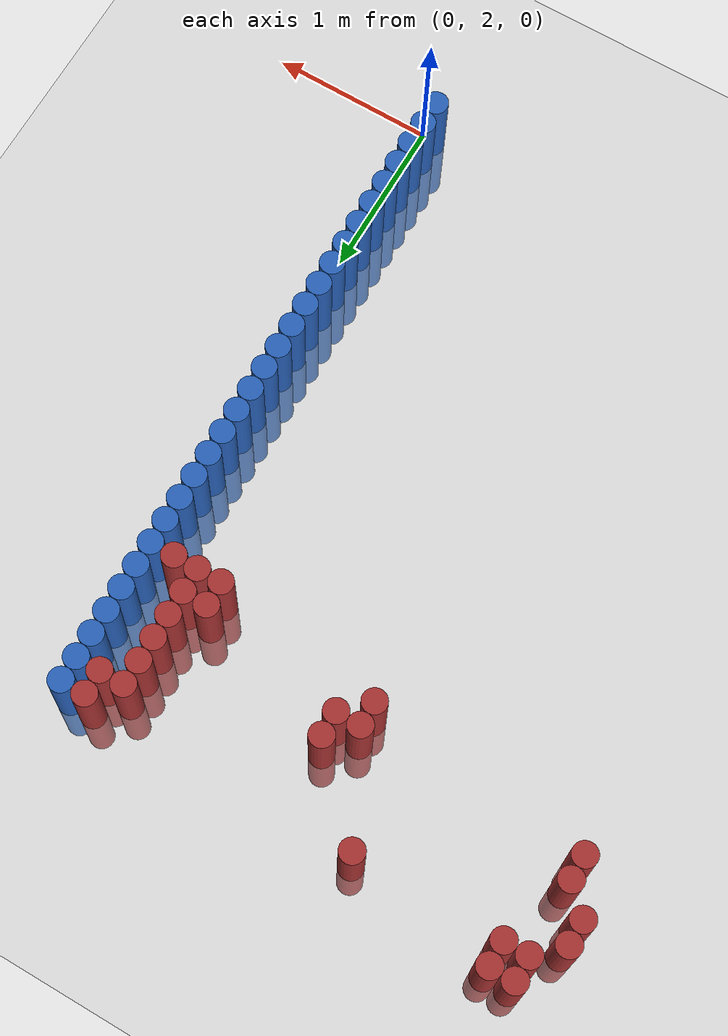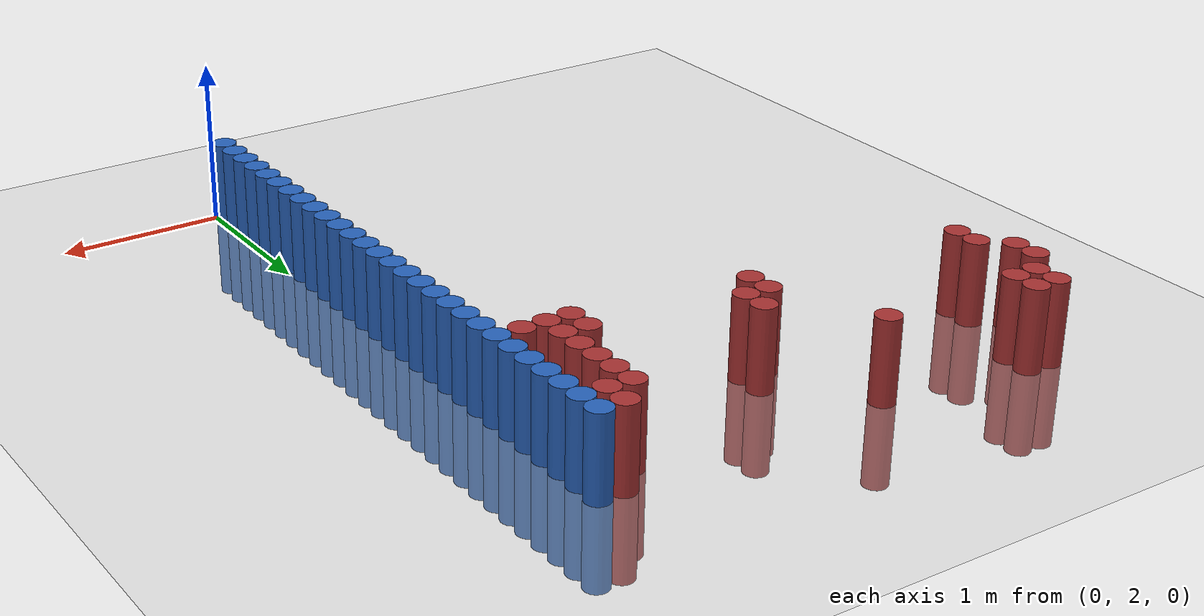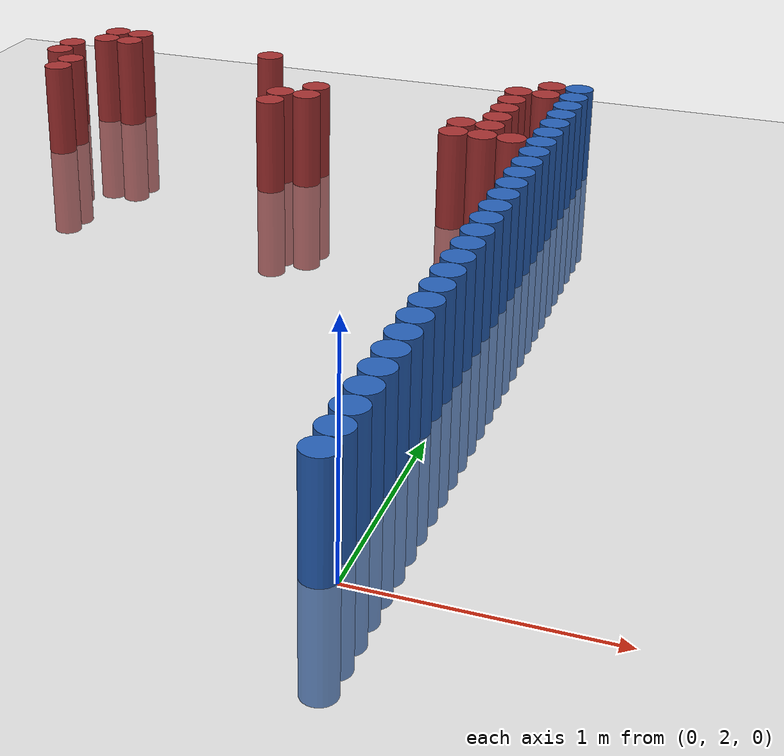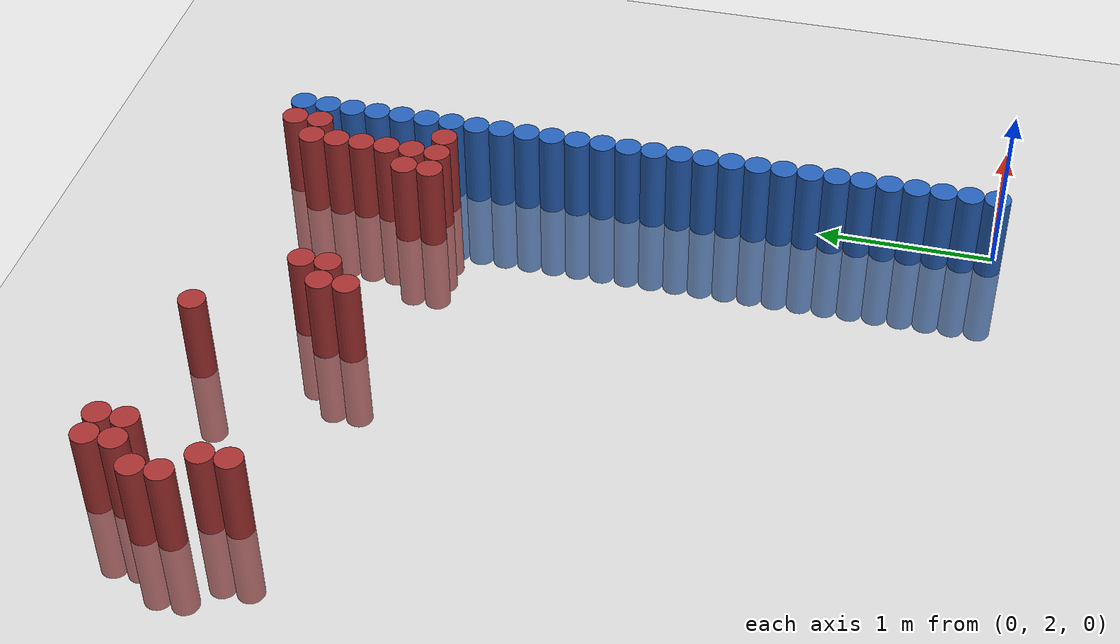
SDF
<sdf version="1.6">
 <world name="default">
  <model name="ground_plane">
   <static>1</static>
   <link name="link">
    <collision name="collision">
     <geometry><plane><normal>0 0 1</normal><size>100 100</size></plane></geometry>
     <surface><friction><ode><mu>100</mu><mu2>50</mu2></ode></friction></surface>
    </collision>
    <visual name="visual">
     <cast_shadows>0</cast_shadows>
     <geometry><plane><normal>0 0 1</normal><size>100 100</size></plane></geometry>
     <material>
      <script><uri>file://media/materials/scripts/gazebo.material</uri><name>Gazebo/Grey</name></script>
     </material>
    </visual>
   </link>
  </model>
  <model name="unit_cylinder_54">
   <static>1</static>
   <pose>-0.075000 2.025000 0.000000 0.000000 0.000000 0.000000</pose>
   <link name="link">
    <inertial>
     <mass>1</mass>
     <inertia><ixx>0.145833</ixx><ixy>0</ixy><ixz>0</ixz><iyy>0.145833</iyy><iyz>0</iyz><izz>0.125</izz></inertia>
    </inertial>
    <collision name="collision">
     <geometry><cylinder><radius>0.075000</radius><length>1</length></cylinder></geometry>
    </collision>
    <visual name="visual">
     <geometry><cylinder><radius>0.075000</radius><length>1</length></cylinder></geometry>
     <material>
      <ambient>0.152000 0.379000 0.720000 1</ambient>
      <diffuse>0.152000 0.379000 0.720000 1</diffuse>
     </material>
     <material>
      <script><name>Gazebo/Grey</name><uri>file://media/materials/scripts/gazebo.material</uri></script>
     </material>
    </visual>
   </link>
  </model>
  <model name="unit_cylinder_56">
   <static>1</static>
   <pose>-0.075000 2.175000 0.000000 0.000000 0.000000 0.000000</pose>
   <link name="link">
    <inertial>
     <mass>1</mass>
     <inertia><ixx>0.145833</ixx><ixy>0</ixy><ixz>0</ixz><iyy>0.145833</iyy><iyz>0</iyz><izz>0.125</izz></inertia>
    </inertial>
    <collision name="collision">
     <geometry><cylinder><radius>0.075000</radius><length>1</length></cylinder></geometry>
    </collision>
    <visual name="visual">
     <geometry><cylinder><radius>0.075000</radius><length>1</length></cylinder></geometry>
     <material>
      <ambient>0.152000 0.379000 0.720000 1</ambient>
      <diffuse>0.152000 0.379000 0.720000 1</diffuse>
     </material>
     <material>
      <script><name>Gazebo/Grey</name><uri>file://media/materials/scripts/gazebo.material</uri></script>
     </material>
    </visual>
   </link>
  </model>
  <model name="unit_cylinder_58">
   <static>1</static>
   <pose>-0.075000 2.325000 0.000000 0.000000 0.000000 0.000000</pose>
   <link name="link">
    <inertial>
     <mass>1</mass>
     <inertia><ixx>0.145833</ixx><ixy>0</ixy><ixz>0</ixz><iyy>0.145833</iyy><iyz>0</iyz><izz>0.125</izz></inertia>
    </inertial>
    <collision name="collision">
     <geometry><cylinder><radius>0.075000</radius><length>1</length></cylinder></geometry>
    </collision>
    <visual name="visual">
     <geometry><cylinder><radius>0.075000</radius><length>1</length></cylinder></geometry>
     <material>
      <ambient>0.152000 0.379000 0.720000 1</ambient>
      <diffuse>0.152000 0.379000 0.720000 1</diffuse>
     </material>
     <material>
      <script><name>Gazebo/Grey</name><uri>file://media/materials/scripts/gazebo.material</uri></script>
     </material>
    </visual>
   </link>
  </model>
  <model name="unit_cylinder_60">
   <static>1</static>
   <pose>-0.075000 2.475000 0.000000 0.000000 0.000000 0.000000</pose>
   <link name="link">
    <inertial>
     <mass>1</mass>
     <inertia><ixx>0.145833</ixx><ixy>0</ixy><ixz>0</ixz><iyy>0.145833</iyy><iyz>0</iyz><izz>0.125</izz></inertia>
    </inertial>
    <collision name="collision">
     <geometry><cylinder><radius>0.075000</radius><length>1</length></cylinder></geometry>
    </collision>
    <visual name="visual">
     <geometry><cylinder><radius>0.075000</radius><length>1</length></cylinder></geometry>
     <material>
      <ambient>0.152000 0.379000 0.720000 1</ambient>
      <diffuse>0.152000 0.379000 0.720000 1</diffuse>
     </material>
     <material>
      <script><name>Gazebo/Grey</name><uri>file://media/materials/scripts/gazebo.material</uri></script>
     </material>
    </visual>
   </link>
  </model>
  <model name="unit_cylinder_62">
   <static>1</static>
   <pose>-0.075000 2.625000 0.000000 0.000000 0.000000 0.000000</pose>
   <link name="link">
    <inertial>
     <mass>1</mass>
     <inertia><ixx>0.145833</ixx><ixy>0</ixy><ixz>0</ixz><iyy>0.145833</iyy><iyz>0</iyz><izz>0.125</izz></inertia>
    </inertial>
    <collision name="collision">
     <geometry><cylinder><radius>0.075000</radius><length>1</length></cylinder></geometry>
    </collision>
    <visual name="visual">
     <geometry><cylinder><radius>0.075000</radius><length>1</length></cylinder></geometry>
     <material>
      <ambient>0.152000 0.379000 0.720000 1</ambient>
      <diffuse>0.152000 0.379000 0.720000 1</diffuse>
     </material>
     <material>
      <script><name>Gazebo/Grey</name><uri>file://media/materials/scripts/gazebo.material</uri></script>
     </material>
    </visual>
   </link>
  </model>
  <model name="unit_cylinder_64">
   <static>1</static>
   <pose>-0.075000 2.775000 0.000000 0.000000 0.000000 0.000000</pose>
   <link name="link">
    <inertial>
     <mass>1</mass>
     <inertia><ixx>0.145833</ixx><ixy>0</ixy><ixz>0</ixz><iyy>0.145833</iyy><iyz>0</iyz><izz>0.125</izz></inertia>
    </inertial>
    <collision name="collision">
     <geometry><cylinder><radius>0.075000</radius><length>1</length></cylinder></geometry>
    </collision>
    <visual name="visual">
     <geometry><cylinder><radius>0.075000</radius><length>1</length></cylinder></geometry>
     <material>
      <ambient>0.152000 0.379000 0.720000 1</ambient>
      <diffuse>0.152000 0.379000 0.720000 1</diffuse>
     </material>
     <material>
      <script><name>Gazebo/Grey</name><uri>file://media/materials/scripts/gazebo.material</uri></script>
     </material>
    </visual>
   </link>
  </model>
  <model name="unit_cylinder_66">
   <static>1</static>
   <pose>-0.075000 2.925000 0.000000 0.000000 0.000000 0.000000</pose>
   <link name="link">
    <inertial>
     <mass>1</mass>
     <inertia><ixx>0.145833</ixx><ixy>0</ixy><ixz>0</ixz><iyy>0.145833</iyy><iyz>0</iyz><izz>0.125</izz></inertia>
    </inertial>
    <collision name="collision">
     <geometry><cylinder><radius>0.075000</radius><length>1</length></cylinder></geometry>
    </collision>
    <visual name="visual">
     <geometry><cylinder><radius>0.075000</radius><length>1</length></cylinder></geometry>
     <material>
      <ambient>0.152000 0.379000 0.720000 1</ambient>
      <diffuse>0.152000 0.379000 0.720000 1</diffuse>
     </material>
     <material>
      <script><name>Gazebo/Grey</name><uri>file://media/materials/scripts/gazebo.material</uri></script>
     </material>
    </visual>
   </link>
  </model>
  <model name="unit_cylinder_68">
   <static>1</static>
   <pose>-0.075000 3.075000 0.000000 0.000000 0.000000 0.000000</pose>
   <link name="link">
    <inertial>
     <mass>1</mass>
     <inertia><ixx>0.145833</ixx><ixy>0</ixy><ixz>0</ixz><iyy>0.145833</iyy><iyz>0</iyz><izz>0.125</izz></inertia>
    </inertial>
    <collision name="collision">
     <geometry><cylinder><radius>0.075000</radius><length>1</length></cylinder></geometry>
    </collision>
    <visual name="visual">
     <geometry><cylinder><radius>0.075000</radius><length>1</length></cylinder></geometry>
     <material>
      <ambient>0.152000 0.379000 0.720000 1</ambient>
      <diffuse>0.152000 0.379000 0.720000 1</diffuse>
     </material>
     <material>
      <script><name>Gazebo/Grey</name><uri>file://media/materials/scripts/gazebo.material</uri></script>
     </material>
    </visual>
   </link>
  </model>
  <model name="unit_cylinder_70">
   <static>1</static>
   <pose>-0.075000 3.225000 0.000000 0.000000 0.000000 0.000000</pose>
   <link name="link">
    <inertial>
     <mass>1</mass>
     <inertia><ixx>0.145833</ixx><ixy>0</ixy><ixz>0</ixz><iyy>0.145833</iyy><iyz>0</iyz><izz>0.125</izz></inertia>
    </inertial>
    <collision name="collision">
     <geometry><cylinder><radius>0.075000</radius><length>1</length></cylinder></geometry>
    </collision>
    <visual name="visual">
     <geometry><cylinder><radius>0.075000</radius><length>1</length></cylinder></geometry>
     <material>
      <ambient>0.152000 0.379000 0.720000 1</ambient>
      <diffuse>0.152000 0.379000 0.720000 1</diffuse>
     </material>
     <material>
      <script><name>Gazebo/Grey</name><uri>file://media/materials/scripts/gazebo.material</uri></script>
     </material>
    </visual>
   </link>
  </model>
  <model name="unit_cylinder_72">
   <static>1</static>
   <pose>-0.075000 3.375000 0.000000 0.000000 0.000000 0.000000</pose>
   <link name="link">
    <inertial>
     <mass>1</mass>
     <inertia><ixx>0.145833</ixx><ixy>0</ixy><ixz>0</ixz><iyy>0.145833</iyy><iyz>0</iyz><izz>0.125</izz></inertia>
    </inertial>
    <collision name="collision">
     <geometry><cylinder><radius>0.075000</radius><length>1</length></cylinder></geometry>
    </collision>
    <visual name="visual">
     <geometry><cylinder><radius>0.075000</radius><length>1</length></cylinder></geometry>
     <material>
      <ambient>0.152000 0.379000 0.720000 1</ambient>
      <diffuse>0.152000 0.379000 0.720000 1</diffuse>
     </material>
     <material>
      <script><name>Gazebo/Grey</name><uri>file://media/materials/scripts/gazebo.material</uri></script>
     </material>
    </visual>
   </link>
  </model>
  <model name="unit_cylinder_74">
   <static>1</static>
   <pose>-0.075000 3.525000 0.000000 0.000000 0.000000 0.000000</pose>
   <link name="link">
    <inertial>
     <mass>1</mass>
     <inertia><ixx>0.145833</ixx><ixy>0</ixy><ixz>0</ixz><iyy>0.145833</iyy><iyz>0</iyz><izz>0.125</izz></inertia>
    </inertial>
    <collision name="collision">
     <geometry><cylinder><radius>0.075000</radius><length>1</length></cylinder></geometry>
    </collision>
    <visual name="visual">
     <geometry><cylinder><radius>0.075000</radius><length>1</length></cylinder></geometry>
     <material>
      <ambient>0.152000 0.379000 0.720000 1</ambient>
      <diffuse>0.152000 0.379000 0.720000 1</diffuse>
     </material>
     <material>
      <script><name>Gazebo/Grey</name><uri>file://media/materials/scripts/gazebo.material</uri></script>
     </material>
    </visual>
   </link>
  </model>
  <model name="unit_cylinder_76">
   <static>1</static>
   <pose>-0.075000 3.675000 0.000000 0.000000 0.000000 0.000000</pose>
   <link name="link">
    <inertial>
     <mass>1</mass>
     <inertia><ixx>0.145833</ixx><ixy>0</ixy><ixz>0</ixz><iyy>0.145833</iyy><iyz>0</iyz><izz>0.125</izz></inertia>
    </inertial>
    <collision name="collision">
     <geometry><cylinder><radius>0.075000</radius><length>1</length></cylinder></geometry>
    </collision>
    <visual name="visual">
     <geometry><cylinder><radius>0.075000</radius><length>1</length></cylinder></geometry>
     <material>
      <ambient>0.152000 0.379000 0.720000 1</ambient>
      <diffuse>0.152000 0.379000 0.720000 1</diffuse>
     </material>
     <material>
      <script><name>Gazebo/Grey</name><uri>file://media/materials/scripts/gazebo.material</uri></script>
     </material>
    </visual>
   </link>
  </model>
  <model name="unit_cylinder_78">
   <static>1</static>
   <pose>-0.075000 3.825000 0.000000 0.000000 0.000000 0.000000</pose>
   <link name="link">
    <inertial>
     <mass>1</mass>
     <inertia><ixx>0.145833</ixx><ixy>0</ixy><ixz>0</ixz><iyy>0.145833</iyy><iyz>0</iyz><izz>0.125</izz></inertia>
    </inertial>
    <collision name="collision">
     <geometry><cylinder><radius>0.075000</radius><length>1</length></cylinder></geometry>
    </collision>
    <visual name="visual">
     <geometry><cylinder><radius>0.075000</radius><length>1</length></cylinder></geometry>
     <material>
      <ambient>0.152000 0.379000 0.720000 1</ambient>
      <diffuse>0.152000 0.379000 0.720000 1</diffuse>
     </material>
     <material>
      <script><name>Gazebo/Grey</name><uri>file://media/materials/scripts/gazebo.material</uri></script>
     </material>
    </visual>
   </link>
  </model>
  <model name="unit_cylinder_80">
   <static>1</static>
   <pose>-0.075000 3.975000 0.000000 0.000000 0.000000 0.000000</pose>
   <link name="link">
    <inertial>
     <mass>1</mass>
     <inertia><ixx>0.145833</ixx><ixy>0</ixy><ixz>0</ixz><iyy>0.145833</iyy><iyz>0</iyz><izz>0.125</izz></inertia>
    </inertial>
    <collision name="collision">
     <geometry><cylinder><radius>0.075000</radius><length>1</length></cylinder></geometry>
    </collision>
    <visual name="visual">
     <geometry><cylinder><radius>0.075000</radius><length>1</length></cylinder></geometry>
     <material>
      <ambient>0.152000 0.379000 0.720000 1</ambient>
      <diffuse>0.152000 0.379000 0.720000 1</diffuse>
     </material>
     <material>
      <script><name>Gazebo/Grey</name><uri>file://media/materials/scripts/gazebo.material</uri></script>
     </material>
    </visual>
   </link>
  </model>
  <model name="unit_cylinder_82">
   <static>1</static>
   <pose>-0.075000 4.125000 0.000000 0.000000 0.000000 0.000000</pose>
   <link name="link">
    <inertial>
     <mass>1</mass>
     <inertia><ixx>0.145833</ixx><ixy>0</ixy><ixz>0</ixz><iyy>0.145833</iyy><iyz>0</iyz><izz>0.125</izz></inertia>
    </inertial>
    <collision name="collision">
     <geometry><cylinder><radius>0.075000</radius><length>1</length></cylinder></geometry>
    </collision>
    <visual name="visual">
     <geometry><cylinder><radius>0.075000</radius><length>1</length></cylinder></geometry>
     <material>
      <ambient>0.152000 0.379000 0.720000 1</ambient>
      <diffuse>0.152000 0.379000 0.720000 1</diffuse>
     </material>
     <material>
      <script><name>Gazebo/Grey</name><uri>file://media/materials/scripts/gazebo.material</uri></script>
     </material>
    </visual>
   </link>
  </model>
  <model name="unit_cylinder_84">
   <static>1</static>
   <pose>-0.075000 4.275000 0.000000 0.000000 0.000000 0.000000</pose>
   <link name="link">
    <inertial>
     <mass>1</mass>
     <inertia><ixx>0.145833</ixx><ixy>0</ixy><ixz>0</ixz><iyy>0.145833</iyy><iyz>0</iyz><izz>0.125</izz></inertia>
    </inertial>
    <collision name="collision">
     <geometry><cylinder><radius>0.075000</radius><length>1</length></cylinder></geometry>
    </collision>
    <visual name="visual">
     <geometry><cylinder><radius>0.075000</radius><length>1</length></cylinder></geometry>
     <material>
      <ambient>0.152000 0.379000 0.720000 1</ambient>
      <diffuse>0.152000 0.379000 0.720000 1</diffuse>
     </material>
     <material>
      <script><name>Gazebo/Grey</name><uri>file://media/materials/scripts/gazebo.material</uri></script>
     </material>
    </visual>
   </link>
  </model>
  <model name="unit_cylinder_86">
   <static>1</static>
   <pose>-0.075000 4.425000 0.000000 0.000000 0.000000 0.000000</pose>
   <link name="link">
    <inertial>
     <mass>1</mass>
     <inertia><ixx>0.145833</ixx><ixy>0</ixy><ixz>0</ixz><iyy>0.145833</iyy><iyz>0</iyz><izz>0.125</izz></inertia>
    </inertial>
    <collision name="collision">
     <geometry><cylinder><radius>0.075000</radius><length>1</length></cylinder></geometry>
    </collision>
    <visual name="visual">
     <geometry><cylinder><radius>0.075000</radius><length>1</length></cylinder></geometry>
     <material>
      <ambient>0.152000 0.379000 0.720000 1</ambient>
      <diffuse>0.152000 0.379000 0.720000 1</diffuse>
     </material>
     <material>
      <script><name>Gazebo/Grey</name><uri>file://media/materials/scripts/gazebo.material</uri></script>
     </material>
    </visual>
   </link>
  </model>
  <model name="unit_cylinder_88">
   <static>1</static>
   <pose>-0.075000 4.575000 0.000000 0.000000 0.000000 0.000000</pose>
   <link name="link">
    <inertial>
     <mass>1</mass>
     <inertia><ixx>0.145833</ixx><ixy>0</ixy><ixz>0</ixz><iyy>0.145833</iyy><iyz>0</iyz><izz>0.125</izz></inertia>
    </inertial>
    <collision name="collision">
     <geometry><cylinder><radius>0.075000</radius><length>1</length></cylinder></geometry>
    </collision>
    <visual name="visual">
     <geometry><cylinder><radius>0.075000</radius><length>1</length></cylinder></geometry>
     <material>
      <ambient>0.152000 0.379000 0.720000 1</ambient>
      <diffuse>0.152000 0.379000 0.720000 1</diffuse>
     </material>
     <material>
      <script><name>Gazebo/Grey</name><uri>file://media/materials/scripts/gazebo.material</uri></script>
     </material>
    </visual>
   </link>
  </model>
  <model name="unit_cylinder_90">
   <static>1</static>
   <pose>-0.075000 4.725000 0.000000 0.000000 0.000000 0.000000</pose>
   <link name="link">
    <inertial>
     <mass>1</mass>
     <inertia><ixx>0.145833</ixx><ixy>0</ixy><ixz>0</ixz><iyy>0.145833</iyy><iyz>0</iyz><izz>0.125</izz></inertia>
    </inertial>
    <collision name="collision">
     <geometry><cylinder><radius>0.075000</radius><length>1</length></cylinder></geometry>
    </collision>
    <visual name="visual">
     <geometry><cylinder><radius>0.075000</radius><length>1</length></cylinder></geometry>
     <material>
      <ambient>0.152000 0.379000 0.720000 1</ambient>
      <diffuse>0.152000 0.379000 0.720000 1</diffuse>
     </material>
     <material>
      <script><name>Gazebo/Grey</name><uri>file://media/materials/scripts/gazebo.material</uri></script>
     </material>
    </visual>
   </link>
  </model>
  <model name="unit_cylinder_92">
   <static>1</static>
   <pose>-0.075000 4.875000 0.000000 0.000000 0.000000 0.000000</pose>
   <link name="link">
    <inertial>
     <mass>1</mass>
     <inertia><ixx>0.145833</ixx><ixy>0</ixy><ixz>0</ixz><iyy>0.145833</iyy><iyz>0</iyz><izz>0.125</izz></inertia>
    </inertial>
    <collision name="collision">
     <geometry><cylinder><radius>0.075000</radius><length>1</length></cylinder></geometry>
    </collision>
    <visual name="visual">
     <geometry><cylinder><radius>0.075000</radius><length>1</length></cylinder></geometry>
     <material>
      <ambient>0.152000 0.379000 0.720000 1</ambient>
      <diffuse>0.152000 0.379000 0.720000 1</diffuse>
     </material>
     <material>
      <script><name>Gazebo/Grey</name><uri>file://media/materials/scripts/gazebo.material</uri></script>
     </material>
    </visual>
   </link>
  </model>
  <model name="unit_cylinder_94">
   <static>1</static>
   <pose>-0.075000 5.025000 0.000000 0.000000 0.000000 0.000000</pose>
   <link name="link">
    <inertial>
     <mass>1</mass>
     <inertia><ixx>0.145833</ixx><ixy>0</ixy><ixz>0</ixz><iyy>0.145833</iyy><iyz>0</iyz><izz>0.125</izz></inertia>
    </inertial>
    <collision name="collision">
     <geometry><cylinder><radius>0.075000</radius><length>1</length></cylinder></geometry>
    </collision>
    <visual name="visual">
     <geometry><cylinder><radius>0.075000</radius><length>1</length></cylinder></geometry>
     <material>
      <ambient>0.152000 0.379000 0.720000 1</ambient>
      <diffuse>0.152000 0.379000 0.720000 1</diffuse>
     </material>
     <material>
      <script><name>Gazebo/Grey</name><uri>file://media/materials/scripts/gazebo.material</uri></script>
     </material>
    </visual>
   </link>
  </model>
  <model name="unit_cylinder_204">
   <static>1</static>
   <pose>-3.075000 5.775000 0.000000 0.000000 0.000000 0.000000</pose>
   <link name="link">
    <inertial>
     <mass>1</mass>
     <inertia><ixx>0.145833</ixx><ixy>0</ixy><ixz>0</ixz><iyy>0.145833</iyy><iyz>0</iyz><izz>0.125</izz></inertia>
    </inertial>
    <collision name="collision">
     <geometry><cylinder><radius>0.075000</radius><length>1</length></cylinder></geometry>
    </collision>
    <visual name="visual">
     <geometry><cylinder><radius>0.075000</radius><length>1</length></cylinder></geometry>
     <material>
      <ambient>0.648000 0.192000 0.192000 1</ambient>
      <diffuse>0.648000 0.192000 0.192000 1</diffuse>
     </material>
     <material>
      <script><name>Gazebo/Grey</name><uri>file://media/materials/scripts/gazebo.material</uri></script>
     </material>
    </visual>
   </link>
  </model>
  <model name="unit_cylinder_205">
   <static>1</static>
   <pose>-3.075000 5.925000 0.000000 0.000000 0.000000 0.000000</pose>
   <link name="link">
    <inertial>
     <mass>1</mass>
     <inertia><ixx>0.145833</ixx><ixy>0</ixy><ixz>0</ixz><iyy>0.145833</iyy><iyz>0</iyz><izz>0.125</izz></inertia>
    </inertial>
    <collision name="collision">
     <geometry><cylinder><radius>0.075000</radius><length>1</length></cylinder></geometry>
    </collision>
    <visual name="visual">
     <geometry><cylinder><radius>0.075000</radius><length>1</length></cylinder></geometry>
     <material>
      <ambient>0.648000 0.192000 0.192000 1</ambient>
      <diffuse>0.648000 0.192000 0.192000 1</diffuse>
     </material>
     <material>
      <script><name>Gazebo/Grey</name><uri>file://media/materials/scripts/gazebo.material</uri></script>
     </material>
    </visual>
   </link>
  </model>
  <model name="unit_cylinder_210">
   <static>1</static>
   <pose>-2.925000 5.475000 0.000000 0.000000 0.000000 0.000000</pose>
   <link name="link">
    <inertial>
     <mass>1</mass>
     <inertia><ixx>0.145833</ixx><ixy>0</ixy><ixz>0</ixz><iyy>0.145833</iyy><iyz>0</iyz><izz>0.125</izz></inertia>
    </inertial>
    <collision name="collision">
     <geometry><cylinder><radius>0.075000</radius><length>1</length></cylinder></geometry>
    </collision>
    <visual name="visual">
     <geometry><cylinder><radius>0.075000</radius><length>1</length></cylinder></geometry>
     <material>
      <ambient>0.648000 0.192000 0.192000 1</ambient>
      <diffuse>0.648000 0.192000 0.192000 1</diffuse>
     </material>
     <material>
      <script><name>Gazebo/Grey</name><uri>file://media/materials/scripts/gazebo.material</uri></script>
     </material>
    </visual>
   </link>
  </model>
  <model name="unit_cylinder_211">
   <static>1</static>
   <pose>-2.925000 5.625000 0.000000 0.000000 0.000000 0.000000</pose>
   <link name="link">
    <inertial>
     <mass>1</mass>
     <inertia><ixx>0.145833</ixx><ixy>0</ixy><ixz>0</ixz><iyy>0.145833</iyy><iyz>0</iyz><izz>0.125</izz></inertia>
    </inertial>
    <collision name="collision">
     <geometry><cylinder><radius>0.075000</radius><length>1</length></cylinder></geometry>
    </collision>
    <visual name="visual">
     <geometry><cylinder><radius>0.075000</radius><length>1</length></cylinder></geometry>
     <material>
      <ambient>0.648000 0.192000 0.192000 1</ambient>
      <diffuse>0.648000 0.192000 0.192000 1</diffuse>
     </material>
     <material>
      <script><name>Gazebo/Grey</name><uri>file://media/materials/scripts/gazebo.material</uri></script>
     </material>
    </visual>
   </link>
  </model>
  <model name="unit_cylinder_212">
   <static>1</static>
   <pose>-2.925000 6.075000 0.000000 0.000000 0.000000 0.000000</pose>
   <link name="link">
    <inertial>
     <mass>1</mass>
     <inertia><ixx>0.145833</ixx><ixy>0</ixy><ixz>0</ixz><iyy>0.145833</iyy><iyz>0</iyz><izz>0.125</izz></inertia>
    </inertial>
    <collision name="collision">
     <geometry><cylinder><radius>0.075000</radius><length>1</length></cylinder></geometry>
    </collision>
    <visual name="visual">
     <geometry><cylinder><radius>0.075000</radius><length>1</length></cylinder></geometry>
     <material>
      <ambient>0.648000 0.192000 0.192000 1</ambient>
      <diffuse>0.648000 0.192000 0.192000 1</diffuse>
     </material>
     <material>
      <script><name>Gazebo/Grey</name><uri>file://media/materials/scripts/gazebo.material</uri></script>
     </material>
    </visual>
   </link>
  </model>
  <model name="unit_cylinder_213">
   <static>1</static>
   <pose>-2.925000 6.225000 0.000000 0.000000 0.000000 0.000000</pose>
   <link name="link">
    <inertial>
     <mass>1</mass>
     <inertia><ixx>0.145833</ixx><ixy>0</ixy><ixz>0</ixz><iyy>0.145833</iyy><iyz>0</iyz><izz>0.125</izz></inertia>
    </inertial>
    <collision name="collision">
     <geometry><cylinder><radius>0.075000</radius><length>1</length></cylinder></geometry>
    </collision>
    <visual name="visual">
     <geometry><cylinder><radius>0.075000</radius><length>1</length></cylinder></geometry>
     <material>
      <ambient>0.648000 0.192000 0.192000 1</ambient>
      <diffuse>0.648000 0.192000 0.192000 1</diffuse>
     </material>
     <material>
      <script><name>Gazebo/Grey</name><uri>file://media/materials/scripts/gazebo.material</uri></script>
     </material>
    </visual>
   </link>
  </model>
  <model name="unit_cylinder_222">
   <static>1</static>
   <pose>-2.775000 6.075000 0.000000 0.000000 0.000000 0.000000</pose>
   <link name="link">
    <inertial>
     <mass>1</mass>
     <inertia><ixx>0.145833</ixx><ixy>0</ixy><ixz>0</ixz><iyy>0.145833</iyy><iyz>0</iyz><izz>0.125</izz></inertia>
    </inertial>
    <collision name="collision">
     <geometry><cylinder><radius>0.075000</radius><length>1</length></cylinder></geometry>
    </collision>
    <visual name="visual">
     <geometry><cylinder><radius>0.075000</radius><length>1</length></cylinder></geometry>
     <material>
      <ambient>0.648000 0.192000 0.192000 1</ambient>
      <diffuse>0.648000 0.192000 0.192000 1</diffuse>
     </material>
     <material>
      <script><name>Gazebo/Grey</name><uri>file://media/materials/scripts/gazebo.material</uri></script>
     </material>
    </visual>
   </link>
  </model>
  <model name="unit_cylinder_223">
   <static>1</static>
   <pose>-2.775000 6.225000 0.000000 0.000000 0.000000 0.000000</pose>
   <link name="link">
    <inertial>
     <mass>1</mass>
     <inertia><ixx>0.145833</ixx><ixy>0</ixy><ixz>0</ixz><iyy>0.145833</iyy><iyz>0</iyz><izz>0.125</izz></inertia>
    </inertial>
    <collision name="collision">
     <geometry><cylinder><radius>0.075000</radius><length>1</length></cylinder></geometry>
    </collision>
    <visual name="visual">
     <geometry><cylinder><radius>0.075000</radius><length>1</length></cylinder></geometry>
     <material>
      <ambient>0.648000 0.192000 0.192000 1</ambient>
      <diffuse>0.648000 0.192000 0.192000 1</diffuse>
     </material>
     <material>
      <script><name>Gazebo/Grey</name><uri>file://media/materials/scripts/gazebo.material</uri></script>
     </material>
    </visual>
   </link>
  </model>
  <model name="unit_cylinder_279">
   <static>1</static>
   <pose>-1.875000 6.075000 0.000000 0.000000 0.000000 0.000000</pose>
   <link name="link">
    <inertial>
     <mass>1</mass>
     <inertia><ixx>0.145833</ixx><ixy>0</ixy><ixz>0</ixz><iyy>0.145833</iyy><iyz>0</iyz><izz>0.125</izz></inertia>
    </inertial>
    <collision name="collision">
     <geometry><cylinder><radius>0.075000</radius><length>1</length></cylinder></geometry>
    </collision>
    <visual name="visual">
     <geometry><cylinder><radius>0.075000</radius><length>1</length></cylinder></geometry>
     <material>
      <ambient>0.648000 0.192000 0.192000 1</ambient>
      <diffuse>0.648000 0.192000 0.192000 1</diffuse>
     </material>
     <material>
      <script><name>Gazebo/Grey</name><uri>file://media/materials/scripts/gazebo.material</uri></script>
     </material>
    </visual>
   </link>
  </model>
  <model name="unit_cylinder_301">
   <static>1</static>
   <pose>-1.575000 5.325000 0.000000 0.000000 0.000000 0.000000</pose>
   <link name="link">
    <inertial>
     <mass>1</mass>
     <inertia><ixx>0.145833</ixx><ixy>0</ixy><ixz>0</ixz><iyy>0.145833</iyy><iyz>0</iyz><izz>0.125</izz></inertia>
    </inertial>
    <collision name="collision">
     <geometry><cylinder><radius>0.075000</radius><length>1</length></cylinder></geometry>
    </collision>
    <visual name="visual">
     <geometry><cylinder><radius>0.075000</radius><length>1</length></cylinder></geometry>
     <material>
      <ambient>0.648000 0.192000 0.192000 1</ambient>
      <diffuse>0.648000 0.192000 0.192000 1</diffuse>
     </material>
     <material>
      <script><name>Gazebo/Grey</name><uri>file://media/materials/scripts/gazebo.material</uri></script>
     </material>
    </visual>
   </link>
  </model>
  <model name="unit_cylinder_302">
   <static>1</static>
   <pose>-1.575000 5.475000 0.000000 0.000000 0.000000 0.000000</pose>
   <link name="link">
    <inertial>
     <mass>1</mass>
     <inertia><ixx>0.145833</ixx><ixy>0</ixy><ixz>0</ixz><iyy>0.145833</iyy><iyz>0</iyz><izz>0.125</izz></inertia>
    </inertial>
    <collision name="collision">
     <geometry><cylinder><radius>0.075000</radius><length>1</length></cylinder></geometry>
    </collision>
    <visual name="visual">
     <geometry><cylinder><radius>0.075000</radius><length>1</length></cylinder></geometry>
     <material>
      <ambient>0.648000 0.192000 0.192000 1</ambient>
      <diffuse>0.648000 0.192000 0.192000 1</diffuse>
     </material>
     <material>
      <script><name>Gazebo/Grey</name><uri>file://media/materials/scripts/gazebo.material</uri></script>
     </material>
    </visual>
   </link>
  </model>
  <model name="unit_cylinder_308">
   <static>1</static>
   <pose>-1.425000 5.475000 0.000000 0.000000 0.000000 0.000000</pose>
   <link name="link">
    <inertial>
     <mass>1</mass>
     <inertia><ixx>0.145833</ixx><ixy>0</ixy><ixz>0</ixz><iyy>0.145833</iyy><iyz>0</iyz><izz>0.125</izz></inertia>
    </inertial>
    <collision name="collision">
     <geometry><cylinder><radius>0.075000</radius><length>1</length></cylinder></geometry>
    </collision>
    <visual name="visual">
     <geometry><cylinder><radius>0.075000</radius><length>1</length></cylinder></geometry>
     <material>
      <ambient>0.648000 0.192000 0.192000 1</ambient>
      <diffuse>0.648000 0.192000 0.192000 1</diffuse>
     </material>
     <material>
      <script><name>Gazebo/Grey</name><uri>file://media/materials/scripts/gazebo.material</uri></script>
     </material>
    </visual>
   </link>
  </model>
  <model name="unit_cylinder_309">
   <static>1</static>
   <pose>-1.425000 5.625000 0.000000 0.000000 0.000000 0.000000</pose>
   <link name="link">
    <inertial>
     <mass>1</mass>
     <inertia><ixx>0.145833</ixx><ixy>0</ixy><ixz>0</ixz><iyy>0.145833</iyy><iyz>0</iyz><izz>0.125</izz></inertia>
    </inertial>
    <collision name="collision">
     <geometry><cylinder><radius>0.075000</radius><length>1</length></cylinder></geometry>
    </collision>
    <visual name="visual">
     <geometry><cylinder><radius>0.075000</radius><length>1</length></cylinder></geometry>
     <material>
      <ambient>0.648000 0.192000 0.192000 1</ambient>
      <diffuse>0.648000 0.192000 0.192000 1</diffuse>
     </material>
     <material>
      <script><name>Gazebo/Grey</name><uri>file://media/materials/scripts/gazebo.material</uri></script>
     </material>
    </visual>
   </link>
  </model>
  <model name="unit_cylinder_315">
   <static>1</static>
   <pose>-0.525000 5.175000 0.000000 0.000000 0.000000 0.000000</pose>
   <link name="link">
    <inertial>
     <mass>1</mass>
     <inertia><ixx>0.145833</ixx><ixy>0</ixy><ixz>0</ixz><iyy>0.145833</iyy><iyz>0</iyz><izz>0.125</izz></inertia>
    </inertial>
    <collision name="collision">
     <geometry><cylinder><radius>0.075000</radius><length>1</length></cylinder></geometry>
    </collision>
    <visual name="visual">
     <geometry><cylinder><radius>0.075000</radius><length>1</length></cylinder></geometry>
     <material>
      <ambient>0.648000 0.192000 0.192000 1</ambient>
      <diffuse>0.648000 0.192000 0.192000 1</diffuse>
     </material>
     <material>
      <script><name>Gazebo/Grey</name><uri>file://media/materials/scripts/gazebo.material</uri></script>
     </material>
    </visual>
   </link>
  </model>
  <model name="unit_cylinder_316">
   <static>1</static>
   <pose>-0.525000 5.325000 0.000000 0.000000 0.000000 0.000000</pose>
   <link name="link">
    <inertial>
     <mass>1</mass>
     <inertia><ixx>0.145833</ixx><ixy>0</ixy><ixz>0</ixz><iyy>0.145833</iyy><iyz>0</iyz><izz>0.125</izz></inertia>
    </inertial>
    <collision name="collision">
     <geometry><cylinder><radius>0.075000</radius><length>1</length></cylinder></geometry>
    </collision>
    <visual name="visual">
     <geometry><cylinder><radius>0.075000</radius><length>1</length></cylinder></geometry>
     <material>
      <ambient>0.648000 0.192000 0.192000 1</ambient>
      <diffuse>0.648000 0.192000 0.192000 1</diffuse>
     </material>
     <material>
      <script><name>Gazebo/Grey</name><uri>file://media/materials/scripts/gazebo.material</uri></script>
     </material>
    </visual>
   </link>
  </model>
  <model name="unit_cylinder_317">
   <static>1</static>
   <pose>-0.375000 5.175000 0.000000 0.000000 0.000000 0.000000</pose>
   <link name="link">
    <inertial>
     <mass>1</mass>
     <inertia><ixx>0.145833</ixx><ixy>0</ixy><ixz>0</ixz><iyy>0.145833</iyy><iyz>0</iyz><izz>0.125</izz></inertia>
    </inertial>
    <collision name="collision">
     <geometry><cylinder><radius>0.075000</radius><length>1</length></cylinder></geometry>
    </collision>
    <visual name="visual">
     <geometry><cylinder><radius>0.075000</radius><length>1</length></cylinder></geometry>
     <material>
      <ambient>0.648000 0.192000 0.192000 1</ambient>
      <diffuse>0.648000 0.192000 0.192000 1</diffuse>
     </material>
     <material>
      <script><name>Gazebo/Grey</name><uri>file://media/materials/scripts/gazebo.material</uri></script>
     </material>
    </visual>
   </link>
  </model>
  <model name="unit_cylinder_318">
   <static>1</static>
   <pose>-0.375000 5.325000 0.000000 0.000000 0.000000 0.000000</pose>
   <link name="link">
    <inertial>
     <mass>1</mass>
     <inertia><ixx>0.145833</ixx><ixy>0</ixy><ixz>0</ixz><iyy>0.145833</iyy><iyz>0</iyz><izz>0.125</izz></inertia>
    </inertial>
    <collision name="collision">
     <geometry><cylinder><radius>0.075000</radius><length>1</length></cylinder></geometry>
    </collision>
    <visual name="visual">
     <geometry><cylinder><radius>0.075000</radius><length>1</length></cylinder></geometry>
     <material>
      <ambient>0.648000 0.192000 0.192000 1</ambient>
      <diffuse>0.648000 0.192000 0.192000 1</diffuse>
     </material>
     <material>
      <script><name>Gazebo/Grey</name><uri>file://media/materials/scripts/gazebo.material</uri></script>
     </material>
    </visual>
   </link>
  </model>
  <model name="unit_cylinder_319">
   <static>1</static>
   <pose>-0.375000 5.475000 0.000000 0.000000 0.000000 0.000000</pose>
   <link name="link">
    <inertial>
     <mass>1</mass>
     <inertia><ixx>0.145833</ixx><ixy>0</ixy><ixz>0</ixz><iyy>0.145833</iyy><iyz>0</iyz><izz>0.125</izz></inertia>
    </inertial>
    <collision name="collision">
     <geometry><cylinder><radius>0.075000</radius><length>1</length></cylinder></geometry>
    </collision>
    <visual name="visual">
     <geometry><cylinder><radius>0.075000</radius><length>1</length></cylinder></geometry>
     <material>
      <ambient>0.648000 0.192000 0.192000 1</ambient>
      <diffuse>0.648000 0.192000 0.192000 1</diffuse>
     </material>
     <material>
      <script><name>Gazebo/Grey</name><uri>file://media/materials/scripts/gazebo.material</uri></script>
     </material>
    </visual>
   </link>
  </model>
  <model name="unit_cylinder_320">
   <static>1</static>
   <pose>-0.375000 5.625000 0.000000 0.000000 0.000000 0.000000</pose>
   <link name="link">
    <inertial>
     <mass>1</mass>
     <inertia><ixx>0.145833</ixx><ixy>0</ixy><ixz>0</ixz><iyy>0.145833</iyy><iyz>0</iyz><izz>0.125</izz></inertia>
    </inertial>
    <collision name="collision">
     <geometry><cylinder><radius>0.075000</radius><length>1</length></cylinder></geometry>
    </collision>
    <visual name="visual">
     <geometry><cylinder><radius>0.075000</radius><length>1</length></cylinder></geometry>
     <material>
      <ambient>0.648000 0.192000 0.192000 1</ambient>
      <diffuse>0.648000 0.192000 0.192000 1</diffuse>
     </material>
     <material>
      <script><name>Gazebo/Grey</name><uri>file://media/materials/scripts/gazebo.material</uri></script>
     </material>
    </visual>
   </link>
  </model>
  <model name="unit_cylinder_321">
   <static>1</static>
   <pose>-0.375000 5.775000 0.000000 0.000000 0.000000 0.000000</pose>
   <link name="link">
    <inertial>
     <mass>1</mass>
     <inertia><ixx>0.145833</ixx><ixy>0</ixy><ixz>0</ixz><iyy>0.145833</iyy><iyz>0</iyz><izz>0.125</izz></inertia>
    </inertial>
    <collision name="collision">
     <geometry><cylinder><radius>0.075000</radius><length>1</length></cylinder></geometry>
    </collision>
    <visual name="visual">
     <geometry><cylinder><radius>0.075000</radius><length>1</length></cylinder></geometry>
     <material>
      <ambient>0.648000 0.192000 0.192000 1</ambient>
      <diffuse>0.648000 0.192000 0.192000 1</diffuse>
     </material>
     <material>
      <script><name>Gazebo/Grey</name><uri>file://media/materials/scripts/gazebo.material</uri></script>
     </material>
    </visual>
   </link>
  </model>
  <model name="unit_cylinder_322">
   <static>1</static>
   <pose>-0.375000 5.925000 0.000000 0.000000 0.000000 0.000000</pose>
   <link name="link">
    <inertial>
     <mass>1</mass>
     <inertia><ixx>0.145833</ixx><ixy>0</ixy><ixz>0</ixz><iyy>0.145833</iyy><iyz>0</iyz><izz>0.125</izz></inertia>
    </inertial>
    <collision name="collision">
     <geometry><cylinder><radius>0.075000</radius><length>1</length></cylinder></geometry>
    </collision>
    <visual name="visual">
     <geometry><cylinder><radius>0.075000</radius><length>1</length></cylinder></geometry>
     <material>
      <ambient>0.648000 0.192000 0.192000 1</ambient>
      <diffuse>0.648000 0.192000 0.192000 1</diffuse>
     </material>
     <material>
      <script><name>Gazebo/Grey</name><uri>file://media/materials/scripts/gazebo.material</uri></script>
     </material>
    </visual>
   </link>
  </model>
  <model name="unit_cylinder_324">
   <static>1</static>
   <pose>-0.225000 5.175000 0.000000 0.000000 0.000000 0.000000</pose>
   <link name="link">
    <inertial>
     <mass>1</mass>
     <inertia><ixx>0.145833</ixx><ixy>0</ixy><ixz>0</ixz><iyy>0.145833</iyy><iyz>0</iyz><izz>0.125</izz></inertia>
    </inertial>
    <collision name="collision">
     <geometry><cylinder><radius>0.075000</radius><length>1</length></cylinder></geometry>
    </collision>
    <visual name="visual">
     <geometry><cylinder><radius>0.075000</radius><length>1</length></cylinder></geometry>
     <material>
      <ambient>0.648000 0.192000 0.192000 1</ambient>
      <diffuse>0.648000 0.192000 0.192000 1</diffuse>
     </material>
     <material>
      <script><name>Gazebo/Grey</name><uri>file://media/materials/scripts/gazebo.material</uri></script>
     </material>
    </visual>
   </link>
  </model>
  <model name="unit_cylinder_325">
   <static>1</static>
   <pose>-0.225000 5.925000 0.000000 0.000000 0.000000 0.000000</pose>
   <link name="link">
    <inertial>
     <mass>1</mass>
     <inertia><ixx>0.145833</ixx><ixy>0</ixy><ixz>0</ixz><iyy>0.145833</iyy><iyz>0</iyz><izz>0.125</izz></inertia>
    </inertial>
    <collision name="collision">
     <geometry><cylinder><radius>0.075000</radius><length>1</length></cylinder></geometry>
    </collision>
    <visual name="visual">
     <geometry><cylinder><radius>0.075000</radius><length>1</length></cylinder></geometry>
     <material>
      <ambient>0.648000 0.192000 0.192000 1</ambient>
      <diffuse>0.648000 0.192000 0.192000 1</diffuse>
     </material>
     <material>
      <script><name>Gazebo/Grey</name><uri>file://media/materials/scripts/gazebo.material</uri></script>
     </material>
    </visual>
   </link>
  </model>
  <model name="unit_cylinder_326">
   <static>1</static>
   <pose>-0.225000 6.075000 0.000000 0.000000 0.000000 0.000000</pose>
   <link name="link">
    <inertial>
     <mass>1</mass>
     <inertia><ixx>0.145833</ixx><ixy>0</ixy><ixz>0</ixz><iyy>0.145833</iyy><iyz>0</iyz><izz>0.125</izz></inertia>
    </inertial>
    <collision name="collision">
     <geometry><cylinder><radius>0.075000</radius><length>1</length></cylinder></geometry>
    </collision>
    <visual name="visual">
     <geometry><cylinder><radius>0.075000</radius><length>1</length></cylinder></geometry>
     <material>
      <ambient>0.648000 0.192000 0.192000 1</ambient>
      <diffuse>0.648000 0.192000 0.192000 1</diffuse>
     </material>
     <material>
      <script><name>Gazebo/Grey</name><uri>file://media/materials/scripts/gazebo.material</uri></script>
     </material>
    </visual>
   </link>
  </model>
  <model name="unit_cylinder_339">
   <static>1</static>
   <pose>-0.075000 5.175000 0.000000 0.000000 0.000000 0.000000</pose>
   <link name="link">
    <inertial>
     <mass>1</mass>
     <inertia><ixx>0.145833</ixx><ixy>0</ixy><ixz>0</ixz><iyy>0.145833</iyy><iyz>0</iyz><izz>0.125</izz></inertia>
    </inertial>
    <collision name="collision">
     <geometry><cylinder><radius>0.075000</radius><length>1</length></cylinder></geometry>
    </collision>
    <visual name="visual">
     <geometry><cylinder><radius>0.075000</radius><length>1</length></cylinder></geometry>
     <material>
      <ambient>0.152000 0.379000 0.720000 1</ambient>
      <diffuse>0.152000 0.379000 0.720000 1</diffuse>
     </material>
     <material>
      <script><name>Gazebo/Grey</name><uri>file://media/materials/scripts/gazebo.material</uri></script>
     </material>
    </visual>
   </link>
  </model>
  <model name="unit_cylinder_340">
   <static>1</static>
   <pose>-0.075000 5.325000 0.000000 0.000000 0.000000 0.000000</pose>
   <link name="link">
    <inertial>
     <mass>1</mass>
     <inertia><ixx>0.145833</ixx><ixy>0</ixy><ixz>0</ixz><iyy>0.145833</iyy><iyz>0</iyz><izz>0.125</izz></inertia>
    </inertial>
    <collision name="collision">
     <geometry><cylinder><radius>0.075000</radius><length>1</length></cylinder></geometry>
    </collision>
    <visual name="visual">
     <geometry><cylinder><radius>0.075000</radius><length>1</length></cylinder></geometry>
     <material>
      <ambient>0.152000 0.379000 0.720000 1</ambient>
      <diffuse>0.152000 0.379000 0.720000 1</diffuse>
     </material>
     <material>
      <script><name>Gazebo/Grey</name><uri>file://media/materials/scripts/gazebo.material</uri></script>
     </material>
    </visual>
   </link>
  </model>
  <model name="unit_cylinder_341">
   <static>1</static>
   <pose>-0.075000 5.475000 0.000000 0.000000 0.000000 0.000000</pose>
   <link name="link">
    <inertial>
     <mass>1</mass>
     <inertia><ixx>0.145833</ixx><ixy>0</ixy><ixz>0</ixz><iyy>0.145833</iyy><iyz>0</iyz><izz>0.125</izz></inertia>
    </inertial>
    <collision name="collision">
     <geometry><cylinder><radius>0.075000</radius><length>1</length></cylinder></geometry>
    </collision>
    <visual name="visual">
     <geometry><cylinder><radius>0.075000</radius><length>1</length></cylinder></geometry>
     <material>
      <ambient>0.152000 0.379000 0.720000 1</ambient>
      <diffuse>0.152000 0.379000 0.720000 1</diffuse>
     </material>
     <material>
      <script><name>Gazebo/Grey</name><uri>file://media/materials/scripts/gazebo.material</uri></script>
     </material>
    </visual>
   </link>
  </model>
  <model name="unit_cylinder_342">
   <static>1</static>
   <pose>-0.075000 5.625000 0.000000 0.000000 0.000000 0.000000</pose>
   <link name="link">
    <inertial>
     <mass>1</mass>
     <inertia><ixx>0.145833</ixx><ixy>0</ixy><ixz>0</ixz><iyy>0.145833</iyy><iyz>0</iyz><izz>0.125</izz></inertia>
    </inertial>
    <collision name="collision">
     <geometry><cylinder><radius>0.075000</radius><length>1</length></cylinder></geometry>
    </collision>
    <visual name="visual">
     <geometry><cylinder><radius>0.075000</radius><length>1</length></cylinder></geometry>
     <material>
      <ambient>0.152000 0.379000 0.720000 1</ambient>
      <diffuse>0.152000 0.379000 0.720000 1</diffuse>
     </material>
     <material>
      <script><name>Gazebo/Grey</name><uri>file://media/materials/scripts/gazebo.material</uri></script>
     </material>
    </visual>
   </link>
  </model>
  <model name="unit_cylinder_343">
   <static>1</static>
   <pose>-0.075000 5.775000 0.000000 0.000000 0.000000 0.000000</pose>
   <link name="link">
    <inertial>
     <mass>1</mass>
     <inertia><ixx>0.145833</ixx><ixy>0</ixy><ixz>0</ixz><iyy>0.145833</iyy><iyz>0</iyz><izz>0.125</izz></inertia>
    </inertial>
    <collision name="collision">
     <geometry><cylinder><radius>0.075000</radius><length>1</length></cylinder></geometry>
    </collision>
    <visual name="visual">
     <geometry><cylinder><radius>0.075000</radius><length>1</length></cylinder></geometry>
     <material>
      <ambient>0.152000 0.379000 0.720000 1</ambient>
      <diffuse>0.152000 0.379000 0.720000 1</diffuse>
     </material>
     <material>
      <script><name>Gazebo/Grey</name><uri>file://media/materials/scripts/gazebo.material</uri></script>
     </material>
    </visual>
   </link>
  </model>
  <model name="unit_cylinder_344">
   <static>1</static>
   <pose>-0.075000 5.925000 0.000000 0.000000 0.000000 0.000000</pose>
   <link name="link">
    <inertial>
     <mass>1</mass>
     <inertia><ixx>0.145833</ixx><ixy>0</ixy><ixz>0</ixz><iyy>0.145833</iyy><iyz>0</iyz><izz>0.125</izz></inertia>
    </inertial>
    <collision name="collision">
     <geometry><cylinder><radius>0.075000</radius><length>1</length></cylinder></geometry>
    </collision>
    <visual name="visual">
     <geometry><cylinder><radius>0.075000</radius><length>1</length></cylinder></geometry>
     <material>
      <ambient>0.152000 0.379000 0.720000 1</ambient>
      <diffuse>0.152000 0.379000 0.720000 1</diffuse>
     </material>
     <material>
      <script><name>Gazebo/Grey</name><uri>file://media/materials/scripts/gazebo.material</uri></script>
     </material>
    </visual>
   </link>
  </model>
  <model name="unit_cylinder_345">
   <static>1</static>
   <pose>-0.075000 6.075000 0.000000 0.000000 0.000000 0.000000</pose>
   <link name="link">
    <inertial>
     <mass>1</mass>
     <inertia><ixx>0.145833</ixx><ixy>0</ixy><ixz>0</ixz><iyy>0.145833</iyy><iyz>0</iyz><izz>0.125</izz></inertia>
    </inertial>
    <collision name="collision">
     <geometry><cylinder><radius>0.075000</radius><length>1</length></cylinder></geometry>
    </collision>
    <visual name="visual">
     <geometry><cylinder><radius>0.075000</radius><length>1</length></cylinder></geometry>
     <material>
      <ambient>0.152000 0.379000 0.720000 1</ambient>
      <diffuse>0.152000 0.379000 0.720000 1</diffuse>
     </material>
     <material>
      <script><name>Gazebo/Grey</name><uri>file://media/materials/scripts/gazebo.material</uri></script>
     </material>
    </visual>
   </link>
  </model>
 </world>
</sdf>
